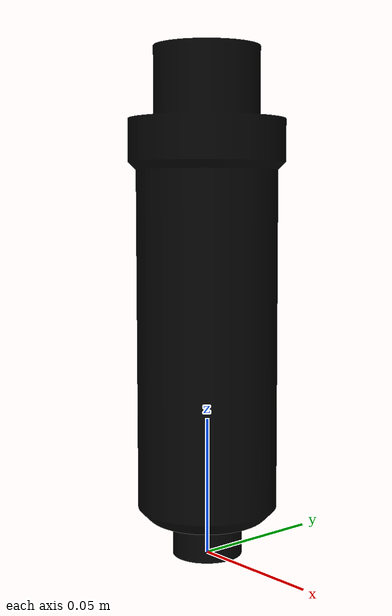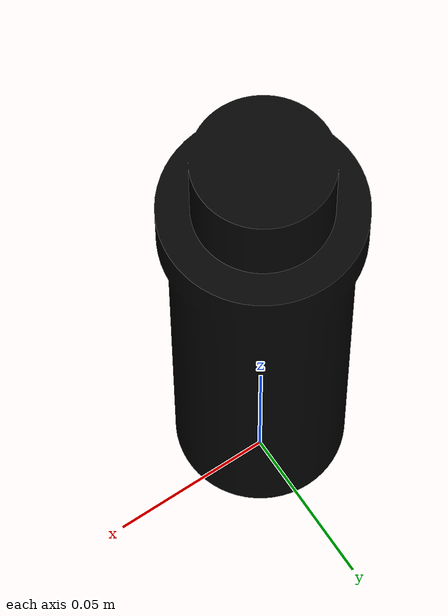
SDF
<?xml version="1.0" ?>
<sdf version="1.9">
    <model name="pinger">
        <static>true</static>
        <link name="pinger">
            <visual name="pinger_visual">
                <geometry>
                    <mesh>
                        <uri>pinger.dae</uri>
                    </mesh>
                </geometry>
            </visual>
            <collision name="pinger_collision">
                <geometry>
                    <mesh>
                        <uri>pinger.dae</uri>
                    </mesh>
                </geometry>
            </collision>
        </link>
    </model>
</sdf>
